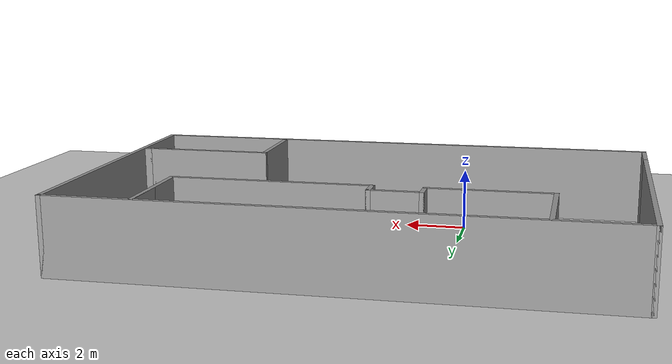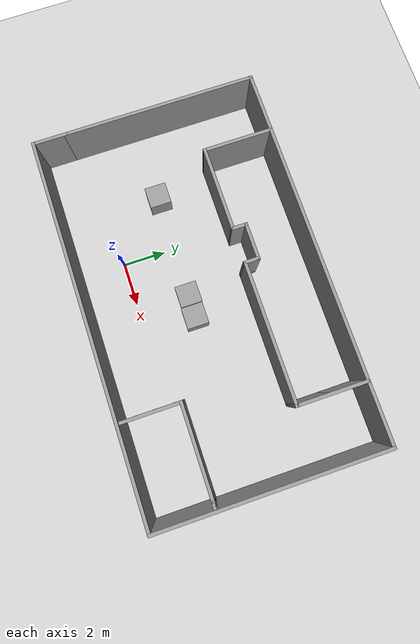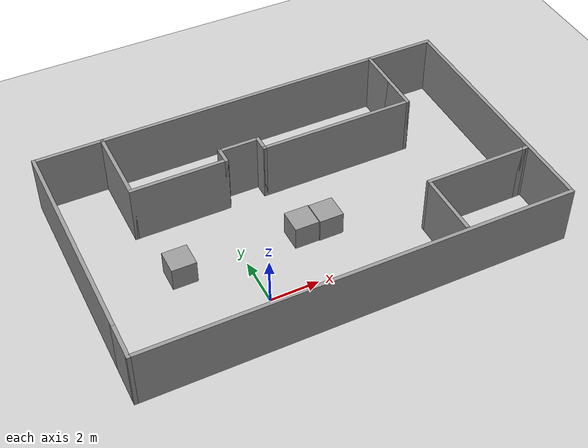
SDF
<sdf version="1.7">
 <world name="default">
  <light name="sun" type="directional">
   <pose>0 0 10 0 -0 0</pose>
   <diffuse>0.8 0.8 0.8 1</diffuse>
   <specular>0.2 0.2 0.2 1</specular>
   <attenuation>
    <range>1000</range>
    <constant>0.9</constant>
    <linear>0.01</linear>
    <quadratic>0.001</quadratic>
   </attenuation>
   <direction>-0.5 0.1 -0.9</direction>
   <spot><inner_angle>0</inner_angle><outer_angle>0</outer_angle><falloff>0</falloff></spot>
  </light>
  <model name="ground_plane">
   <static>1</static>
   <link name="link">
    <collision name="collision">
     <geometry><plane><normal>0 0 1</normal><size>100 100</size></plane></geometry>
     <surface><friction><ode><mu>100</mu><mu2>50</mu2></ode></friction></surface>
    </collision>
    <visual name="visual">
     <cast_shadows>0</cast_shadows>
     <geometry><plane><normal>0 0 1</normal><size>100 100</size></plane></geometry>
     <material>
      <script><uri>file://media/materials/scripts/gazebo.material</uri><name>Gazebo/Grey</name></script>
     </material>
    </visual>
   </link>
  </model>
  <gravity>0 0 -9.8</gravity>
  <magnetic_field>6e-06 2.3e-05 -4.2e-05</magnetic_field>
  <atmosphere type="adiabatic"/>
  <physics type="ode">
   <max_step_size>0.001</max_step_size>
   <real_time_factor>1</real_time_factor>
   <real_time_update_rate>1000</real_time_update_rate>
  </physics>
  <scene><ambient>0.4 0.4 0.4 1</ambient><background>0.7 0.7 0.7 1</background><shadows>1</shadows></scene>
  <spherical_coordinates>
   <surface_model>EARTH_WGS84</surface_model>
   <latitude_deg>0</latitude_deg>
   <longitude_deg>0</longitude_deg>
   <elevation>0</elevation>
   <heading_deg>0</heading_deg>
  </spherical_coordinates>
  <model name="map">
   <pose>2.70126 3.08305 0 0 -0 0</pose>
   <link name="Wall_0">
    <collision name="Wall_0_Collision">
     <geometry><box><size>9 0.15 2.5</size></box></geometry>
     <pose>0 0 1.25 0 -0 0</pose>
    </collision>
    <visual name="Wall_0_Visual">
     <pose>0 0 1.25 0 -0 0</pose>
     <geometry><box><size>9 0.15 2.5</size></box></geometry>
     <material>
      <script><uri>file://media/materials/scripts/gazebo.material</uri><name>Gazebo/Grey</name></script>
      <ambient>1 1 1 1</ambient>
     </material>
     <meta><layer>0</layer></meta>
    </visual>
    <pose>-8.675 0.75 0 0 -0 1.5708</pose>
   </link>
   <link name="Wall_1">
    <collision name="Wall_1_Collision">
     <geometry><box><size>17.5 0.15 2.5</size></box></geometry>
     <pose>0 0 1.25 0 -0 0</pose>
    </collision>
    <visual name="Wall_1_Visual">
     <pose>0 0 1.25 0 -0 0</pose>
     <geometry><box><size>17.5 0.15 2.5</size></box></geometry>
     <material>
      <script><uri>file://media/materials/scripts/gazebo.material</uri><name>Gazebo/Grey</name></script>
      <ambient>1 1 1 1</ambient>
     </material>
     <meta><layer>0</layer></meta>
    </visual>
    <pose>0 5.175 0 0 -0 0</pose>
   </link>
   <link name="Wall_10">
    <collision name="Wall_10_Collision">
     <geometry><box><size>0.75 0.15 2.5</size></box></geometry>
     <pose>0 0 1.25 0 -0 0</pose>
    </collision>
    <visual name="Wall_10_Visual">
     <pose>0 0 1.25 0 -0 0</pose>
     <geometry><box><size>0.75 0.15 2.5</size></box></geometry>
     <material>
      <script><uri>file://media/materials/scripts/gazebo.material</uri><name>Gazebo/Grey</name></script>
      <ambient>1 1 1 1</ambient>
     </material>
     <meta><layer>0</layer></meta>
    </visual>
    <pose>-0.496051 2.32814 0 0 -0 -1.5708</pose>
   </link>
   <link name="Wall_11">
    <collision name="Wall_11_Collision">
     <geometry><box><size>6.5 0.15 2.5</size></box></geometry>
     <pose>0 0 1.25 0 -0 0</pose>
    </collision>
    <visual name="Wall_11_Visual">
     <pose>0 0 1.25 0 -0 0</pose>
     <geometry><box><size>6.5 0.15 2.5</size></box></geometry>
     <material>
      <script><uri>file://media/materials/scripts/gazebo.material</uri><name>Gazebo/Grey</name></script>
      <ambient>1 1 1 1</ambient>
     </material>
     <meta><layer>0</layer></meta>
    </visual>
    <pose>2.67895 2.02814 0 0 -0 0</pose>
   </link>
   <link name="Wall_12">
    <collision name="Wall_12_Collision">
     <geometry><box><size>3.25 0.15 2.5</size></box></geometry>
     <pose>0 0 1.25 0 -0 0</pose>
    </collision>
    <visual name="Wall_12_Visual">
     <pose>0 0 1.25 0 -0 0</pose>
     <geometry><box><size>3.25 0.15 2.5</size></box></geometry>
     <material>
      <script><uri>file://media/materials/scripts/gazebo.material</uri><name>Gazebo/Grey</name></script>
      <ambient>1 1 1 1</ambient>
     </material>
     <meta><layer>0</layer></meta>
    </visual>
    <pose>5.85395 3.57814 0 0 -0 1.5708</pose>
   </link>
   <link name="Wall_13">
    <collision name="Wall_13_Collision">
     <geometry><box><size>3.25 0.15 2.5</size></box></geometry>
     <pose>0 0 1.25 0 -0 0</pose>
    </collision>
    <visual name="Wall_13_Visual">
     <pose>0 0 1.25 0 -0 0</pose>
     <geometry><box><size>3.25 0.15 2.5</size></box></geometry>
     <material>
      <script><uri>file://media/materials/scripts/gazebo.material</uri><name>Gazebo/Grey</name></script>
      <ambient>1 1 1 1</ambient>
     </material>
     <meta><layer>0</layer></meta>
    </visual>
    <pose>5.85395 3.57814 0 0 -0 -1.5708</pose>
   </link>
   <link name="Wall_15">
    <collision name="Wall_15_Collision">
     <geometry><box><size>2.75 0.15 2.5</size></box></geometry>
     <pose>0 0 1.25 0 -0 0</pose>
    </collision>
    <visual name="Wall_15_Visual">
     <pose>0 0 1.25 0 -0 0</pose>
     <geometry><box><size>2.75 0.15 2.5</size></box></geometry>
     <material>
      <script><uri>file://media/materials/scripts/gazebo.material</uri><name>Gazebo/Grey</name></script>
      <ambient>1 1 1 1</ambient>
     </material>
     <meta><layer>0</layer></meta>
    </visual>
    <pose>4.21523 -3.70654 0 0 -0 1.5708</pose>
   </link>
   <link name="Wall_16">
    <collision name="Wall_16_Collision">
     <geometry><box><size>4.25 0.15 2.5</size></box></geometry>
     <pose>0 0 1.25 0 -0 0</pose>
    </collision>
    <visual name="Wall_16_Visual">
     <pose>0 0 1.25 0 -0 0</pose>
     <geometry><box><size>4.25 0.15 2.5</size></box></geometry>
     <material>
      <script><uri>file://media/materials/scripts/gazebo.material</uri><name>Gazebo/Grey</name></script>
      <ambient>1 1 1 1</ambient>
     </material>
     <meta><layer>0</layer></meta>
    </visual>
    <pose>6.26522 -2.40654 0 0 -0 0</pose>
   </link>
   <link name="Wall_17">
    <collision name="Wall_17_Collision">
     <geometry><box><size>0.25 0.15 2.5</size></box></geometry>
     <pose>0 0 1.25 0 -0 0</pose>
    </collision>
    <visual name="Wall_17_Visual">
     <pose>0 0 1.25 0 -0 0</pose>
     <geometry><box><size>0.25 0.15 2.5</size></box></geometry>
     <material>
      <script><uri>file://media/materials/scripts/gazebo.material</uri><name>Gazebo/Grey</name></script>
      <ambient>1 1 1 1</ambient>
     </material>
     <meta><layer>0</layer></meta>
    </visual>
    <pose>8.36523 -2.40654 0 0 -0 0</pose>
   </link>
   <link name="Wall_18">
    <collision name="Wall_18_Collision">
     <geometry><box><size>0.25 0.15 2.5</size></box></geometry>
     <pose>0 0 1.25 0 -0 0</pose>
    </collision>
    <visual name="Wall_18_Visual">
     <pose>0 0 1.25 0 -0 0</pose>
     <geometry><box><size>0.25 0.15 2.5</size></box></geometry>
     <material>
      <script><uri>file://media/materials/scripts/gazebo.material</uri><name>Gazebo/Grey</name></script>
      <ambient>1 1 1 1</ambient>
     </material>
     <meta><layer>0</layer></meta>
    </visual>
    <pose>8.46523 -2.40654 0 0 -0 0</pose>
   </link>
   <link name="Wall_2">
    <collision name="Wall_2_Collision">
     <geometry><box><size>10.5 0.15 2.5</size></box></geometry>
     <pose>0 0 1.25 0 -0 0</pose>
    </collision>
    <visual name="Wall_2_Visual">
     <pose>0 0 1.25 0 -0 0</pose>
     <geometry><box><size>10.5 0.15 2.5</size></box></geometry>
     <material>
      <script><uri>file://media/materials/scripts/gazebo.material</uri><name>Gazebo/Grey</name></script>
      <ambient>1 1 1 1</ambient>
     </material>
     <meta><layer>0</layer></meta>
    </visual>
    <pose>8.675 -0 0 0 -0 -1.5708</pose>
   </link>
   <link name="Wall_3">
    <collision name="Wall_3_Collision">
     <geometry><box><size>17.5 0.15 2.5</size></box></geometry>
     <pose>0 0 1.25 0 -0 0</pose>
    </collision>
    <visual name="Wall_3_Visual">
     <pose>0 0 1.25 0 -0 0</pose>
     <geometry><box><size>17.5 0.15 2.5</size></box></geometry>
     <material>
      <script><uri>file://media/materials/scripts/gazebo.material</uri><name>Gazebo/Grey</name></script>
      <ambient>1 1 1 1</ambient>
     </material>
     <meta><layer>0</layer></meta>
    </visual>
    <pose>0 -5.175 0 0 -0 3.14159</pose>
   </link>
   <link name="Wall_4">
    <collision name="Wall_4_Collision">
     <geometry><box><size>1.65 0.15 2.5</size></box></geometry>
     <pose>0 0 1.25 0 -0 0</pose>
    </collision>
    <visual name="Wall_4_Visual">
     <pose>0 0 1.25 0 -0 0</pose>
     <geometry><box><size>1.65 0.15 2.5</size></box></geometry>
     <material>
      <script><uri>file://media/materials/scripts/gazebo.material</uri><name>Gazebo/Grey</name></script>
      <ambient>1 1 1 1</ambient>
     </material>
     <meta><layer>0</layer></meta>
    </visual>
    <pose>-8.675 -4.425 0 0 -0 1.5708</pose>
   </link>
   <link name="Wall_6">
    <collision name="Wall_6_Collision">
     <geometry><box><size>3.25 0.15 2.5</size></box></geometry>
     <pose>0 0 1.25 0 -0 0</pose>
    </collision>
    <visual name="Wall_6_Visual">
     <pose>0 0 1.25 0 -0 0</pose>
     <geometry><box><size>3.25 0.15 2.5</size></box></geometry>
     <material>
      <script><uri>file://media/materials/scripts/gazebo.material</uri><name>Gazebo/Grey</name></script>
      <ambient>1 1 1 1</ambient>
     </material>
     <meta><layer>0</layer></meta>
    </visual>
    <pose>-5.94605 3.57814 0 0 -0 -1.5708</pose>
   </link>
   <link name="Wall_7">
    <collision name="Wall_7_Collision">
     <geometry><box><size>4 0.15 2.5</size></box></geometry>
     <pose>0 0 1.25 0 -0 0</pose>
    </collision>
    <visual name="Wall_7_Visual">
     <pose>0 0 1.25 0 -0 0</pose>
     <geometry><box><size>4 0.15 2.5</size></box></geometry>
     <material>
      <script><uri>file://media/materials/scripts/gazebo.material</uri><name>Gazebo/Grey</name></script>
      <ambient>1 1 1 1</ambient>
     </material>
     <meta><layer>0</layer></meta>
    </visual>
    <pose>-4.02105 2.02814 0 0 -0 0</pose>
   </link>
   <link name="Wall_8">
    <collision name="Wall_8_Collision">
     <geometry><box><size>0.75 0.15 2.5</size></box></geometry>
     <pose>0 0 1.25 0 -0 0</pose>
    </collision>
    <visual name="Wall_8_Visual">
     <pose>0 0 1.25 0 -0 0</pose>
     <geometry><box><size>0.75 0.15 2.5</size></box></geometry>
     <material>
      <script><uri>file://media/materials/scripts/gazebo.material</uri><name>Gazebo/Grey</name></script>
      <ambient>1 1 1 1</ambient>
     </material>
     <meta><layer>0</layer></meta>
    </visual>
    <pose>-2.09605 2.32814 0 0 -0 1.5708</pose>
   </link>
   <link name="Wall_9">
    <collision name="Wall_9_Collision">
     <geometry><box><size>1.75 0.15 2.5</size></box></geometry>
     <pose>0 0 1.25 0 -0 0</pose>
    </collision>
    <visual name="Wall_9_Visual">
     <pose>0 0 1.25 0 -0 0</pose>
     <geometry><box><size>1.75 0.15 2.5</size></box></geometry>
     <material>
      <script><uri>file://media/materials/scripts/gazebo.material</uri><name>Gazebo/Grey</name></script>
      <ambient>1 1 1 1</ambient>
     </material>
     <meta><layer>0</layer></meta>
    </visual>
    <pose>-1.29605 2.62814 0 0 -0 0</pose>
   </link>
   <static>1</static>
  </model>
  <model name="unit_box">
   <pose>3.49051 2.38333 0.499995 0 1e-05 0</pose>
   <link name="link">
    <inertial>
     <mass>1</mass>
     <inertia>
      <ixx>0.166667</ixx>
      <ixy>0</ixy>
      <ixz>0</ixz>
      <iyy>0.166667</iyy>
      <iyz>0</iyz>
      <izz>0.166667</izz>
     </inertia>
    </inertial>
    <collision name="collision"><geometry><box><size>1 1 1</size></box></geometry></collision>
    <visual name="visual">
     <geometry><box><size>1 1 1</size></box></geometry>
     <material>
      <script><name>Gazebo/Grey</name><uri>file://media/materials/scripts/gazebo.material</uri></script>
     </material>
    </visual>
   </link>
  </model>
  <model name="unit_box_0">
   <pose>2.47026 2.40801 0.499995 -1e-05 -0 0</pose>
   <link name="link">
    <inertial>
     <mass>1</mass>
     <inertia>
      <ixx>0.166667</ixx>
      <ixy>0</ixy>
      <ixz>0</ixz>
      <iyy>0.166667</iyy>
      <iyz>0</iyz>
      <izz>0.166667</izz>
     </inertia>
    </inertial>
    <collision name="collision"><geometry><box><size>1 1 1</size></box></geometry></collision>
    <visual name="visual">
     <geometry><box><size>1 1 1</size></box></geometry>
     <material>
      <script><name>Gazebo/Grey</name><uri>file://media/materials/scripts/gazebo.material</uri></script>
     </material>
    </visual>
   </link>
  </model>
  <model name="unit_box_1">
   <pose>-2.47318 2.53102 0.5 0 -0 0</pose>
   <link name="link">
    <inertial>
     <mass>1</mass>
     <inertia>
      <ixx>0.166667</ixx>
      <ixy>0</ixy>
      <ixz>0</ixz>
      <iyy>0.166667</iyy>
      <iyz>0</iyz>
      <izz>0.166667</izz>
     </inertia>
    </inertial>
    <collision name="collision"><geometry><box><size>1 1 1</size></box></geometry></collision>
    <visual name="visual">
     <geometry><box><size>1 1 1</size></box></geometry>
     <material>
      <script><name>Gazebo/Grey</name><uri>file://media/materials/scripts/gazebo.material</uri></script>
     </material>
    </visual>
   </link>
  </model>
 </world>
</sdf>
